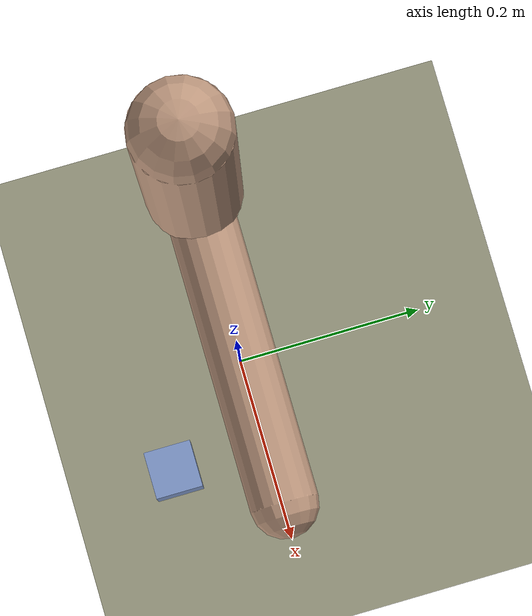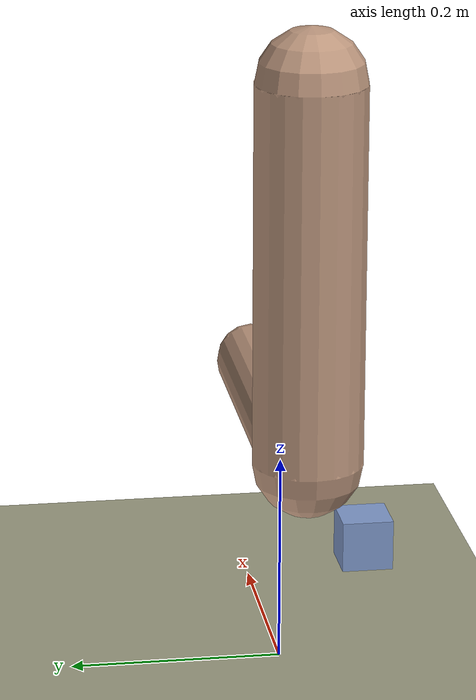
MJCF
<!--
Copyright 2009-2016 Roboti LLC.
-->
<mujoco model="arm_claw (v1.31)">
	<compiler 	inertiafromgeom="true"
				angle="radian"/>

	<size 	nuser_jnt="1"
			nuser_geom="1"/>

	<option	timestep="0.001"
			gravity="0 0 0"
			viscosity="0"
			iterations="20"/>

	<asset>
		<material name="MatGnd" specular=".3" shininess=".3" reflectance="0.3" rgba=".5 .55 .5 1"/>
	</asset>

	<default>
		<joint limited="true" damping="1" stiffness="0" armature=".1" user="0"/>
		<geom solref="0.008 1" solimp="0.95 0.95 0.01" margin="0.001" user="0"/>
		<motor ctrllimited="true" ctrlrange="-1 1"/>
		<position ctrllimited="true"/>

		<default class='0'>
			<geom friction="1 0.005 0.001" rgba=".75 .6 .5 1" contype="1" conaffinity="0"/>
		</default>

		<default class='1'>
			<geom friction="1 0.005 0.001" rgba=".7 .6 .55 1" contype="1" conaffinity="0"/>
		</default>

		<default class='arm'>
			<joint damping="5"/>
		</default>
	</default>

	<worldbody>
		<light directional="true" cutoff="40" exponent="10" diffuse=".4 .4 .4" specular=".7 .7 .7" pos="0 0 1.5" dir="0 0 -1"/>
		<geom name="tableTop" material="MatGnd" type="plane" pos="0.15 0 0.05" size="0.4 0.6 0.5" rgba=".6 .6 .5 1" contype="1" conaffinity="1"/>

		<!--  ================= ARM ================= /-->
		<body name="upperarm" pos="-0.15 0 0.6">
			<geom class="0" type="capsule" fromto="0 0 0 0 0 -0.345" size="0.05"/>
			<joint class='arm' name="s_abduction" type="hinge" pos="0 0 0" range="-1.57 .7" axis="1 0 0" user="001"/>
			<joint class='arm' name="s_flexion" type="hinge" pos="0 0 0" axis="0 -1 0" range="-.85 1.57" user="002"/>
			<joint class='arm' name="s_rotation" type="hinge" pos="0 0 0" limited='false' axis="0 0 1" user="003"/>
			<body name="forearm" pos="0 0 -0.36">
				<geom class="0" type="capsule" fromto="0 0 0 0.325 0 0" size="0.035"/>
				<joint class='arm' name="e_flexion" type="hinge" pos="0 0 0" axis="0 -1 0" range="-1.5 1.05" user="004"/>
				<joint class='arm' name="e_pronation" type="hinge" pos="0 0 0" axis="-1 0 0" range="-1.5 1.57" user="005"/>
				<site name="end_effector" pos="0.325 0 0" size="0.01"/>

	<!--  ================= Palm ================= /-->

			</body>
		</body>

		<!--  ================= OBJECT ================= /-->
		<body name="small_object" pos="0.2 0 0.075">
			<geom type="box" name="small_box" pos="-0.1 -0.1 0" size="0.025 0.025 0.025" rgba="0.5 0.6 0.8 1" user="1" contype="1" conaffinity="1"/>
			<joint armature="0" axis="1 0 0" damping="0" name="target_x" stiffness="0" limited='false' type="slide" user="008"/>
			<joint armature="0" axis="0 1 0" damping="0" name="target_y" stiffness="0" limited='false' type="slide" user="009"/>
		</body>
	</worldbody>

	<actuator>

		<!--  ================= Torque actuators ================= /-->
		<motor joint='s_abduction' 	name='As_abduction' gear="100"/>
		<motor joint='s_flexion' 	name='As_flexion' 	gear="100"/>
		<motor joint='s_rotation' 	name='As_rotation' 	gear="100"/>
		<motor joint='e_flexion' 	name='Ae_flexion' 	gear="70"/>
		<motor joint='e_pronation' 	name='Ae_pronation' gear="70"/>

		<!--  ================= Position actuators ================= /-->

	</actuator>

</mujoco>
